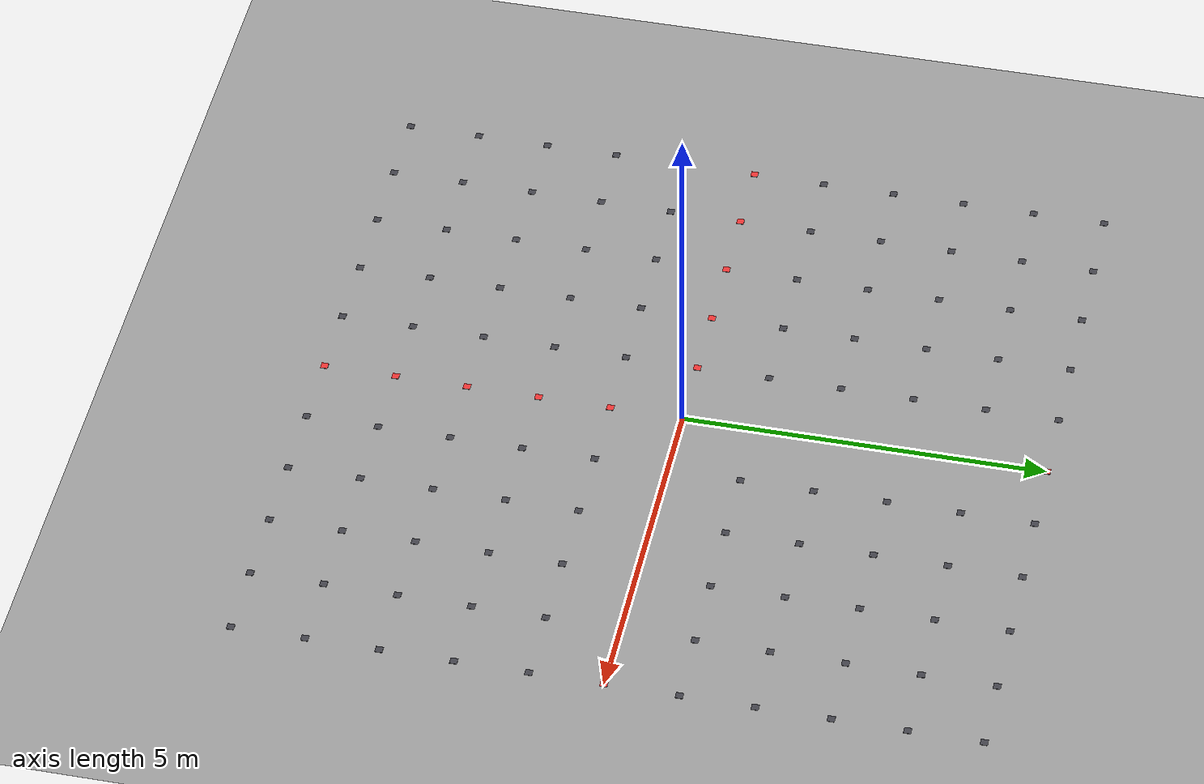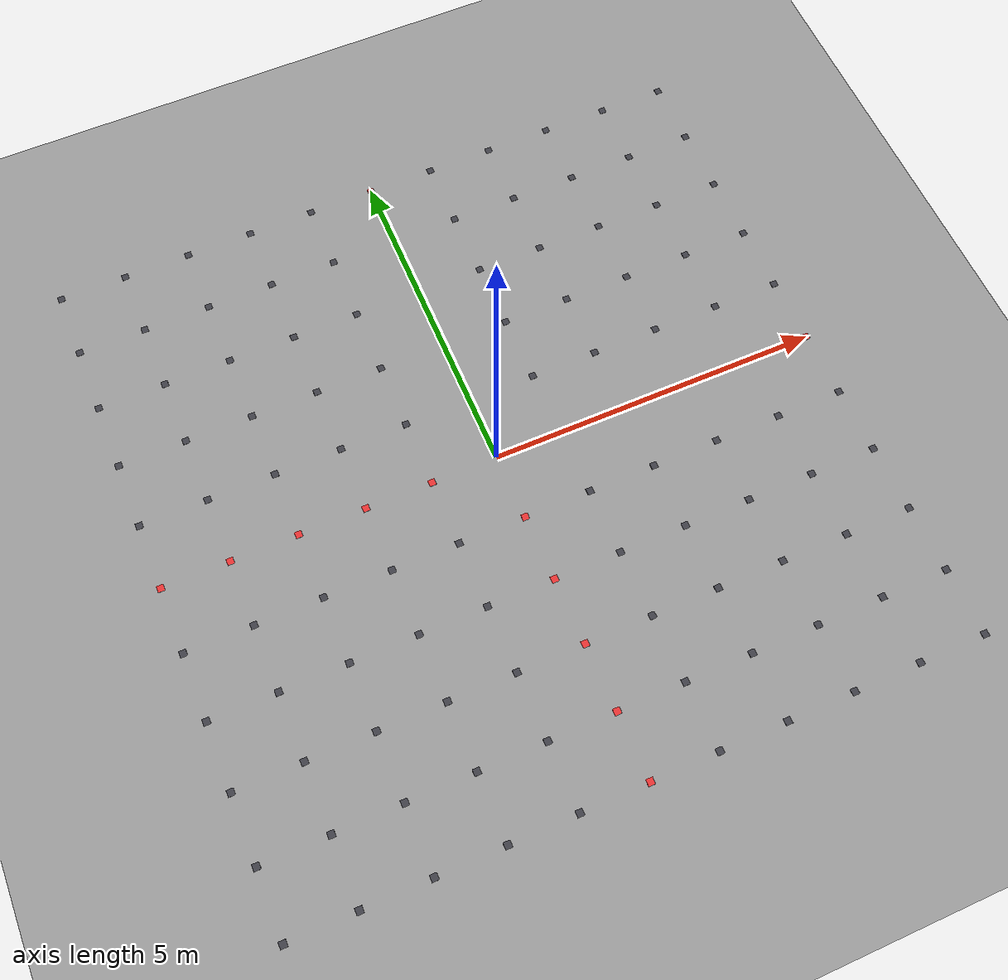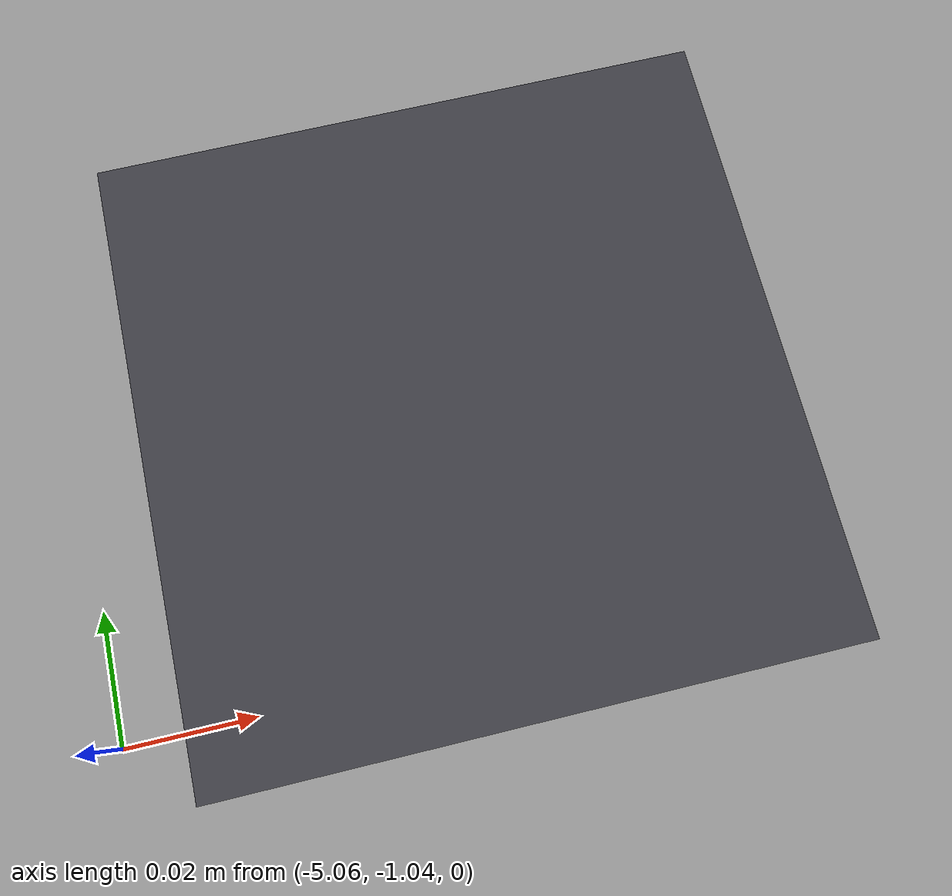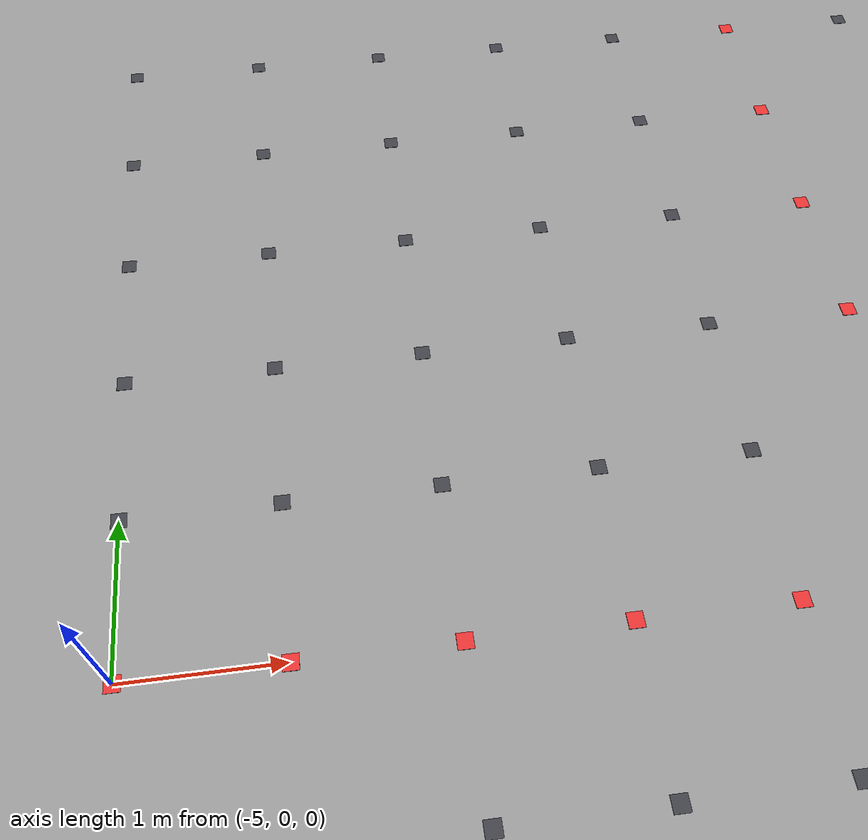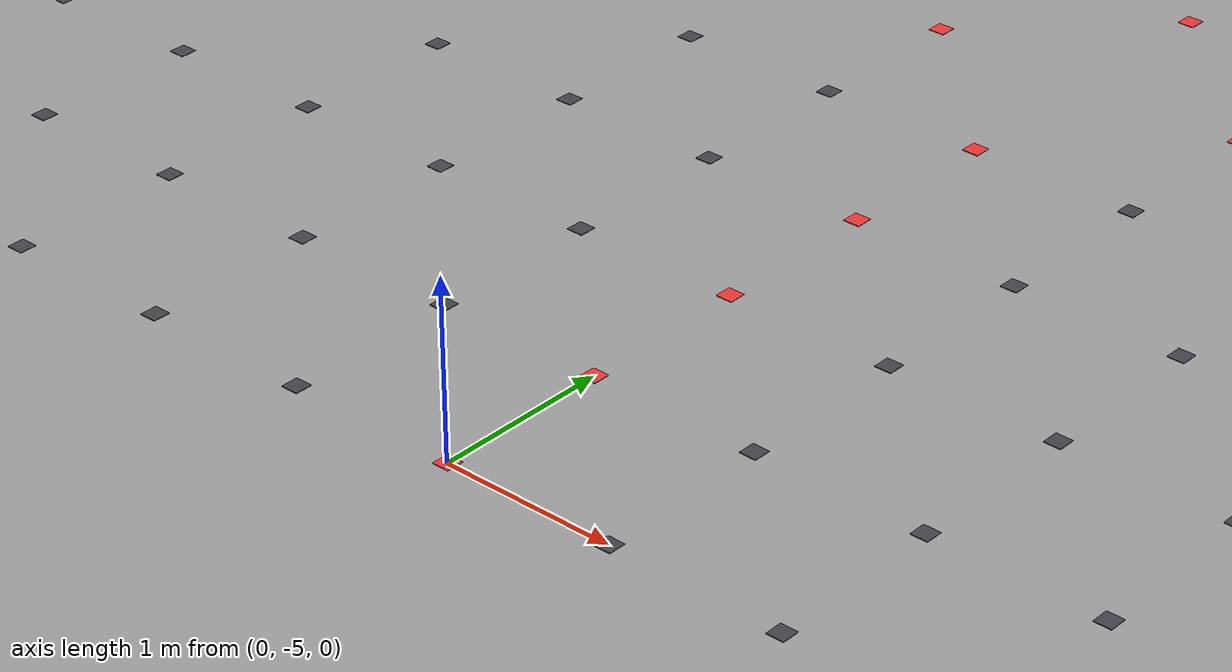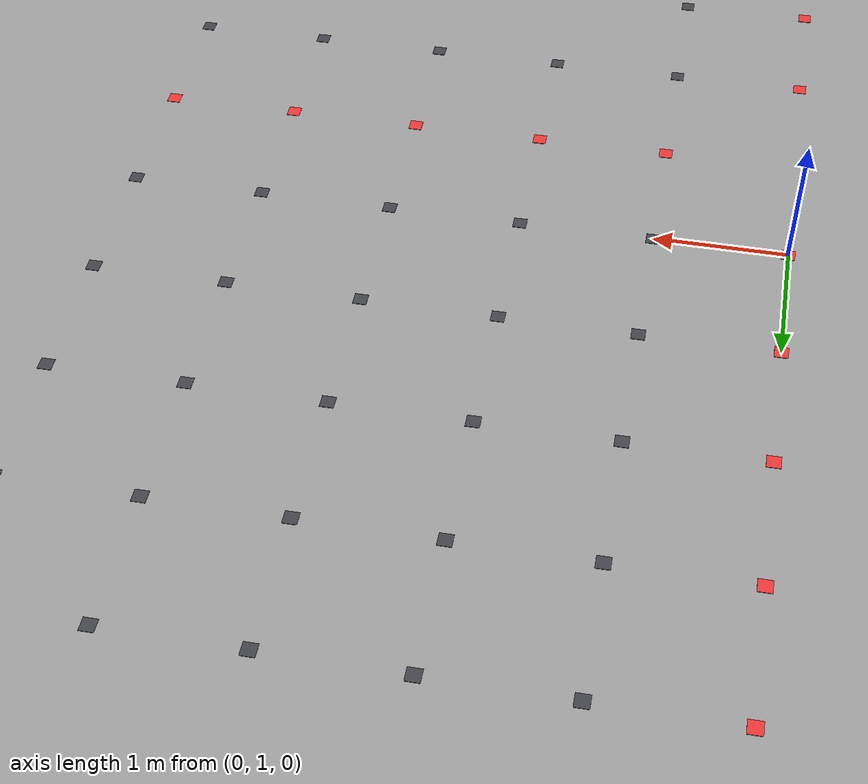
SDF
<?xml version="1.0" ?>
<sdf version="1.9">
  <world name="flat">
    <physics name="1ms" type="dart">
      <max_step_size>0.001</max_step_size>
      <real_time_factor>1.0</real_time_factor>
    </physics>

    <plugin filename="gz-sim-physics-system"
            name="gz::sim::systems::Physics"/>
    <plugin filename="gz-sim-user-commands-system"
            name="gz::sim::systems::UserCommands"/>
    <plugin filename="gz-sim-scene-broadcaster-system"
            name="gz::sim::systems::SceneBroadcaster"/>
    <plugin filename="gz-sim-sensors-system"
            name="gz::sim::systems::Sensors">
      <render_engine>ogre2</render_engine>
    </plugin>
    <plugin filename="gz-sim-imu-system"
            name="gz::sim::systems::Imu"/>

    <light type="directional" name="sun">
      <cast_shadows>true</cast_shadows>
      <pose>0 0 10 0 0 0</pose>
      <diffuse>0.8 0.8 0.8 1</diffuse>
      <specular>0.2 0.2 0.2 1</specular>
      <direction>-0.5 0.1 -0.9</direction>
    </light>

    <model name="ground_plane">
      <static>true</static>
      <link name="link">
        <collision name="collision">
          <geometry><plane><normal>0 0 1</normal><size>100 100</size></plane></geometry>
          <surface>
            <friction>
              <ode><mu>1.0</mu><mu2>1.0</mu2></ode>
            </friction>
          </surface>
        </collision>
        <visual name="visual">
          <geometry><plane><normal>0 0 1</normal><size>100 100</size></plane></geometry>
          <material>
            <ambient>0.4 0.4 0.4 1</ambient>
            <diffuse>0.6 0.6 0.6 1</diffuse>
          </material>
        </visual>
      </link>
    </model>

    <!-- Метки через метр: без них на однотонном полу невозможно на глаз
         оценить, поехал ли робот боком или просто развернулся. -->
    <model name="grid_marks">
      <static>true</static>
      <link name="link">
        <visual name="m_-5_-5">
          <pose>-5.0 -5.0 0.002 0 0 0</pose>
          <geometry><box><size>0.10 0.10 0.004</size></box></geometry>
          <material><ambient>0.25 0.25 0.28 1</ambient><diffuse>0.25 0.25 0.28 1</diffuse></material>
        </visual>
        <visual name="m_-5_-4">
          <pose>-5.0 -4.0 0.002 0 0 0</pose>
          <geometry><box><size>0.10 0.10 0.004</size></box></geometry>
          <material><ambient>0.25 0.25 0.28 1</ambient><diffuse>0.25 0.25 0.28 1</diffuse></material>
        </visual>
        <visual name="m_-5_-3">
          <pose>-5.0 -3.0 0.002 0 0 0</pose>
          <geometry><box><size>0.10 0.10 0.004</size></box></geometry>
          <material><ambient>0.25 0.25 0.28 1</ambient><diffuse>0.25 0.25 0.28 1</diffuse></material>
        </visual>
        <visual name="m_-5_-2">
          <pose>-5.0 -2.0 0.002 0 0 0</pose>
          <geometry><box><size>0.10 0.10 0.004</size></box></geometry>
          <material><ambient>0.25 0.25 0.28 1</ambient><diffuse>0.25 0.25 0.28 1</diffuse></material>
        </visual>
        <visual name="m_-5_-1">
          <pose>-5.0 -1.0 0.002 0 0 0</pose>
          <geometry><box><size>0.10 0.10 0.004</size></box></geometry>
          <material><ambient>0.25 0.25 0.28 1</ambient><diffuse>0.25 0.25 0.28 1</diffuse></material>
        </visual>
        <visual name="m_-5_0">
          <pose>-5.0 0.0 0.002 0 0 0</pose>
          <geometry><box><size>0.10 0.10 0.004</size></box></geometry>
          <material><ambient>0.9 0.2 0.2 1</ambient><diffuse>0.9 0.2 0.2 1</diffuse></material>
        </visual>
        <visual name="m_-5_1">
          <pose>-5.0 1.0 0.002 0 0 0</pose>
          <geometry><box><size>0.10 0.10 0.004</size></box></geometry>
          <material><ambient>0.25 0.25 0.28 1</ambient><diffuse>0.25 0.25 0.28 1</diffuse></material>
        </visual>
        <visual name="m_-5_2">
          <pose>-5.0 2.0 0.002 0 0 0</pose>
          <geometry><box><size>0.10 0.10 0.004</size></box></geometry>
          <material><ambient>0.25 0.25 0.28 1</ambient><diffuse>0.25 0.25 0.28 1</diffuse></material>
        </visual>
        <visual name="m_-5_3">
          <pose>-5.0 3.0 0.002 0 0 0</pose>
          <geometry><box><size>0.10 0.10 0.004</size></box></geometry>
          <material><ambient>0.25 0.25 0.28 1</ambient><diffuse>0.25 0.25 0.28 1</diffuse></material>
        </visual>
        <visual name="m_-5_4">
          <pose>-5.0 4.0 0.002 0 0 0</pose>
          <geometry><box><size>0.10 0.10 0.004</size></box></geometry>
          <material><ambient>0.25 0.25 0.28 1</ambient><diffuse>0.25 0.25 0.28 1</diffuse></material>
        </visual>
        <visual name="m_-5_5">
          <pose>-5.0 5.0 0.002 0 0 0</pose>
          <geometry><box><size>0.10 0.10 0.004</size></box></geometry>
          <material><ambient>0.25 0.25 0.28 1</ambient><diffuse>0.25 0.25 0.28 1</diffuse></material>
        </visual>
        <visual name="m_-4_-5">
          <pose>-4.0 -5.0 0.002 0 0 0</pose>
          <geometry><box><size>0.10 0.10 0.004</size></box></geometry>
          <material><ambient>0.25 0.25 0.28 1</ambient><diffuse>0.25 0.25 0.28 1</diffuse></material>
        </visual>
        <visual name="m_-4_-4">
          <pose>-4.0 -4.0 0.002 0 0 0</pose>
          <geometry><box><size>0.10 0.10 0.004</size></box></geometry>
          <material><ambient>0.25 0.25 0.28 1</ambient><diffuse>0.25 0.25 0.28 1</diffuse></material>
        </visual>
        <visual name="m_-4_-3">
          <pose>-4.0 -3.0 0.002 0 0 0</pose>
          <geometry><box><size>0.10 0.10 0.004</size></box></geometry>
          <material><ambient>0.25 0.25 0.28 1</ambient><diffuse>0.25 0.25 0.28 1</diffuse></material>
        </visual>
        <visual name="m_-4_-2">
          <pose>-4.0 -2.0 0.002 0 0 0</pose>
          <geometry><box><size>0.10 0.10 0.004</size></box></geometry>
          <material><ambient>0.25 0.25 0.28 1</ambient><diffuse>0.25 0.25 0.28 1</diffuse></material>
        </visual>
        <visual name="m_-4_-1">
          <pose>-4.0 -1.0 0.002 0 0 0</pose>
          <geometry><box><size>0.10 0.10 0.004</size></box></geometry>
          <material><ambient>0.25 0.25 0.28 1</ambient><diffuse>0.25 0.25 0.28 1</diffuse></material>
        </visual>
        <visual name="m_-4_0">
          <pose>-4.0 0.0 0.002 0 0 0</pose>
          <geometry><box><size>0.10 0.10 0.004</size></box></geometry>
          <material><ambient>0.9 0.2 0.2 1</ambient><diffuse>0.9 0.2 0.2 1</diffuse></material>
        </visual>
        <visual name="m_-4_1">
          <pose>-4.0 1.0 0.002 0 0 0</pose>
          <geometry><box><size>0.10 0.10 0.004</size></box></geometry>
          <material><ambient>0.25 0.25 0.28 1</ambient><diffuse>0.25 0.25 0.28 1</diffuse></material>
        </visual>
        <visual name="m_-4_2">
          <pose>-4.0 2.0 0.002 0 0 0</pose>
          <geometry><box><size>0.10 0.10 0.004</size></box></geometry>
          <material><ambient>0.25 0.25 0.28 1</ambient><diffuse>0.25 0.25 0.28 1</diffuse></material>
        </visual>
        <visual name="m_-4_3">
          <pose>-4.0 3.0 0.002 0 0 0</pose>
          <geometry><box><size>0.10 0.10 0.004</size></box></geometry>
          <material><ambient>0.25 0.25 0.28 1</ambient><diffuse>0.25 0.25 0.28 1</diffuse></material>
        </visual>
        <visual name="m_-4_4">
          <pose>-4.0 4.0 0.002 0 0 0</pose>
          <geometry><box><size>0.10 0.10 0.004</size></box></geometry>
          <material><ambient>0.25 0.25 0.28 1</ambient><diffuse>0.25 0.25 0.28 1</diffuse></material>
        </visual>
        <visual name="m_-4_5">
          <pose>-4.0 5.0 0.002 0 0 0</pose>
          <geometry><box><size>0.10 0.10 0.004</size></box></geometry>
          <material><ambient>0.25 0.25 0.28 1</ambient><diffuse>0.25 0.25 0.28 1</diffuse></material>
        </visual>
        <visual name="m_-3_-5">
          <pose>-3.0 -5.0 0.002 0 0 0</pose>
          <geometry><box><size>0.10 0.10 0.004</size></box></geometry>
          <material><ambient>0.25 0.25 0.28 1</ambient><diffuse>0.25 0.25 0.28 1</diffuse></material>
        </visual>
        <visual name="m_-3_-4">
          <pose>-3.0 -4.0 0.002 0 0 0</pose>
          <geometry><box><size>0.10 0.10 0.004</size></box></geometry>
          <material><ambient>0.25 0.25 0.28 1</ambient><diffuse>0.25 0.25 0.28 1</diffuse></material>
        </visual>
        <visual name="m_-3_-3">
          <pose>-3.0 -3.0 0.002 0 0 0</pose>
          <geometry><box><size>0.10 0.10 0.004</size></box></geometry>
          <material><ambient>0.25 0.25 0.28 1</ambient><diffuse>0.25 0.25 0.28 1</diffuse></material>
        </visual>
        <visual name="m_-3_-2">
          <pose>-3.0 -2.0 0.002 0 0 0</pose>
          <geometry><box><size>0.10 0.10 0.004</size></box></geometry>
          <material><ambient>0.25 0.25 0.28 1</ambient><diffuse>0.25 0.25 0.28 1</diffuse></material>
        </visual>
        <visual name="m_-3_-1">
          <pose>-3.0 -1.0 0.002 0 0 0</pose>
          <geometry><box><size>0.10 0.10 0.004</size></box></geometry>
          <material><ambient>0.25 0.25 0.28 1</ambient><diffuse>0.25 0.25 0.28 1</diffuse></material>
        </visual>
        <visual name="m_-3_0">
          <pose>-3.0 0.0 0.002 0 0 0</pose>
          <geometry><box><size>0.10 0.10 0.004</size></box></geometry>
          <material><ambient>0.9 0.2 0.2 1</ambient><diffuse>0.9 0.2 0.2 1</diffuse></material>
        </visual>
        <visual name="m_-3_1">
          <pose>-3.0 1.0 0.002 0 0 0</pose>
          <geometry><box><size>0.10 0.10 0.004</size></box></geometry>
          <material><ambient>0.25 0.25 0.28 1</ambient><diffuse>0.25 0.25 0.28 1</diffuse></material>
        </visual>
        <visual name="m_-3_2">
          <pose>-3.0 2.0 0.002 0 0 0</pose>
          <geometry><box><size>0.10 0.10 0.004</size></box></geometry>
          <material><ambient>0.25 0.25 0.28 1</ambient><diffuse>0.25 0.25 0.28 1</diffuse></material>
        </visual>
        <visual name="m_-3_3">
          <pose>-3.0 3.0 0.002 0 0 0</pose>
          <geometry><box><size>0.10 0.10 0.004</size></box></geometry>
          <material><ambient>0.25 0.25 0.28 1</ambient><diffuse>0.25 0.25 0.28 1</diffuse></material>
        </visual>
        <visual name="m_-3_4">
          <pose>-3.0 4.0 0.002 0 0 0</pose>
          <geometry><box><size>0.10 0.10 0.004</size></box></geometry>
          <material><ambient>0.25 0.25 0.28 1</ambient><diffuse>0.25 0.25 0.28 1</diffuse></material>
        </visual>
        <visual name="m_-3_5">
          <pose>-3.0 5.0 0.002 0 0 0</pose>
          <geometry><box><size>0.10 0.10 0.004</size></box></geometry>
          <material><ambient>0.25 0.25 0.28 1</ambient><diffuse>0.25 0.25 0.28 1</diffuse></material>
        </visual>
        <visual name="m_-2_-5">
          <pose>-2.0 -5.0 0.002 0 0 0</pose>
          <geometry><box><size>0.10 0.10 0.004</size></box></geometry>
          <material><ambient>0.25 0.25 0.28 1</ambient><diffuse>0.25 0.25 0.28 1</diffuse></material>
        </visual>
        <visual name="m_-2_-4">
          <pose>-2.0 -4.0 0.002 0 0 0</pose>
          <geometry><box><size>0.10 0.10 0.004</size></box></geometry>
          <material><ambient>0.25 0.25 0.28 1</ambient><diffuse>0.25 0.25 0.28 1</diffuse></material>
        </visual>
        <visual name="m_-2_-3">
          <pose>-2.0 -3.0 0.002 0 0 0</pose>
          <geometry><box><size>0.10 0.10 0.004</size></box></geometry>
          <material><ambient>0.25 0.25 0.28 1</ambient><diffuse>0.25 0.25 0.28 1</diffuse></material>
        </visual>
        <visual name="m_-2_-2">
          <pose>-2.0 -2.0 0.002 0 0 0</pose>
          <geometry><box><size>0.10 0.10 0.004</size></box></geometry>
          <material><ambient>0.25 0.25 0.28 1</ambient><diffuse>0.25 0.25 0.28 1</diffuse></material>
        </visual>
        <visual name="m_-2_-1">
          <pose>-2.0 -1.0 0.002 0 0 0</pose>
          <geometry><box><size>0.10 0.10 0.004</size></box></geometry>
          <material><ambient>0.25 0.25 0.28 1</ambient><diffuse>0.25 0.25 0.28 1</diffuse></material>
        </visual>
        <visual name="m_-2_0">
          <pose>-2.0 0.0 0.002 0 0 0</pose>
          <geometry><box><size>0.10 0.10 0.004</size></box></geometry>
          <material><ambient>0.9 0.2 0.2 1</ambient><diffuse>0.9 0.2 0.2 1</diffuse></material>
        </visual>
        <visual name="m_-2_1">
          <pose>-2.0 1.0 0.002 0 0 0</pose>
          <geometry><box><size>0.10 0.10 0.004</size></box></geometry>
          <material><ambient>0.25 0.25 0.28 1</ambient><diffuse>0.25 0.25 0.28 1</diffuse></material>
        </visual>
        <visual name="m_-2_2">
          <pose>-2.0 2.0 0.002 0 0 0</pose>
          <geometry><box><size>0.10 0.10 0.004</size></box></geometry>
          <material><ambient>0.25 0.25 0.28 1</ambient><diffuse>0.25 0.25 0.28 1</diffuse></material>
        </visual>
        <visual name="m_-2_3">
          <pose>-2.0 3.0 0.002 0 0 0</pose>
          <geometry><box><size>0.10 0.10 0.004</size></box></geometry>
          <material><ambient>0.25 0.25 0.28 1</ambient><diffuse>0.25 0.25 0.28 1</diffuse></material>
        </visual>
        <visual name="m_-2_4">
          <pose>-2.0 4.0 0.002 0 0 0</pose>
          <geometry><box><size>0.10 0.10 0.004</size></box></geometry>
          <material><ambient>0.25 0.25 0.28 1</ambient><diffuse>0.25 0.25 0.28 1</diffuse></material>
        </visual>
        <visual name="m_-2_5">
          <pose>-2.0 5.0 0.002 0 0 0</pose>
          <geometry><box><size>0.10 0.10 0.004</size></box></geometry>
          <material><ambient>0.25 0.25 0.28 1</ambient><diffuse>0.25 0.25 0.28 1</diffuse></material>
        </visual>
        <visual name="m_-1_-5">
          <pose>-1.0 -5.0 0.002 0 0 0</pose>
          <geometry><box><size>0.10 0.10 0.004</size></box></geometry>
          <material><ambient>0.25 0.25 0.28 1</ambient><diffuse>0.25 0.25 0.28 1</diffuse></material>
        </visual>
        <visual name="m_-1_-4">
          <pose>-1.0 -4.0 0.002 0 0 0</pose>
          <geometry><box><size>0.10 0.10 0.004</size></box></geometry>
          <material><ambient>0.25 0.25 0.28 1</ambient><diffuse>0.25 0.25 0.28 1</diffuse></material>
        </visual>
        <visual name="m_-1_-3">
          <pose>-1.0 -3.0 0.002 0 0 0</pose>
          <geometry><box><size>0.10 0.10 0.004</size></box></geometry>
          <material><ambient>0.25 0.25 0.28 1</ambient><diffuse>0.25 0.25 0.28 1</diffuse></material>
        </visual>
        <visual name="m_-1_-2">
          <pose>-1.0 -2.0 0.002 0 0 0</pose>
          <geometry><box><size>0.10 0.10 0.004</size></box></geometry>
          <material><ambient>0.25 0.25 0.28 1</ambient><diffuse>0.25 0.25 0.28 1</diffuse></material>
        </visual>
        <visual name="m_-1_-1">
          <pose>-1.0 -1.0 0.002 0 0 0</pose>
          <geometry><box><size>0.10 0.10 0.004</size></box></geometry>
          <material><ambient>0.25 0.25 0.28 1</ambient><diffuse>0.25 0.25 0.28 1</diffuse></material>
        </visual>
        <visual name="m_-1_0">
          <pose>-1.0 0.0 0.002 0 0 0</pose>
          <geometry><box><size>0.10 0.10 0.004</size></box></geometry>
          <material><ambient>0.9 0.2 0.2 1</ambient><diffuse>0.9 0.2 0.2 1</diffuse></material>
        </visual>
        <visual name="m_-1_1">
          <pose>-1.0 1.0 0.002 0 0 0</pose>
          <geometry><box><size>0.10 0.10 0.004</size></box></geometry>
          <material><ambient>0.25 0.25 0.28 1</ambient><diffuse>0.25 0.25 0.28 1</diffuse></material>
        </visual>
        <visual name="m_-1_2">
          <pose>-1.0 2.0 0.002 0 0 0</pose>
          <geometry><box><size>0.10 0.10 0.004</size></box></geometry>
          <material><ambient>0.25 0.25 0.28 1</ambient><diffuse>0.25 0.25 0.28 1</diffuse></material>
        </visual>
        <visual name="m_-1_3">
          <pose>-1.0 3.0 0.002 0 0 0</pose>
          <geometry><box><size>0.10 0.10 0.004</size></box></geometry>
          <material><ambient>0.25 0.25 0.28 1</ambient><diffuse>0.25 0.25 0.28 1</diffuse></material>
        </visual>
        <visual name="m_-1_4">
          <pose>-1.0 4.0 0.002 0 0 0</pose>
          <geometry><box><size>0.10 0.10 0.004</size></box></geometry>
          <material><ambient>0.25 0.25 0.28 1</ambient><diffuse>0.25 0.25 0.28 1</diffuse></material>
        </visual>
        <visual name="m_-1_5">
          <pose>-1.0 5.0 0.002 0 0 0</pose>
          <geometry><box><size>0.10 0.10 0.004</size></box></geometry>
          <material><ambient>0.25 0.25 0.28 1</ambient><diffuse>0.25 0.25 0.28 1</diffuse></material>
        </visual>
        <visual name="m_0_-5">
          <pose>0.0 -5.0 0.002 0 0 0</pose>
          <geometry><box><size>0.10 0.10 0.004</size></box></geometry>
          <material><ambient>0.9 0.2 0.2 1</ambient><diffuse>0.9 0.2 0.2 1</diffuse></material>
        </visual>
        <visual name="m_0_-4">
          <pose>0.0 -4.0 0.002 0 0 0</pose>
          <geometry><box><size>0.10 0.10 0.004</size></box></geometry>
          <material><ambient>0.9 0.2 0.2 1</ambient><diffuse>0.9 0.2 0.2 1</diffuse></material>
        </visual>
        <visual name="m_0_-3">
          <pose>0.0 -3.0 0.002 0 0 0</pose>
          <geometry><box><size>0.10 0.10 0.004</size></box></geometry>
          <material><ambient>0.9 0.2 0.2 1</ambient><diffuse>0.9 0.2 0.2 1</diffuse></material>
        </visual>
        <visual name="m_0_-2">
          <pose>0.0 -2.0 0.002 0 0 0</pose>
          <geometry><box><size>0.10 0.10 0.004</size></box></geometry>
          <material><ambient>0.9 0.2 0.2 1</ambient><diffuse>0.9 0.2 0.2 1</diffuse></material>
        </visual>
        <visual name="m_0_-1">
          <pose>0.0 -1.0 0.002 0 0 0</pose>
          <geometry><box><size>0.10 0.10 0.004</size></box></geometry>
          <material><ambient>0.9 0.2 0.2 1</ambient><diffuse>0.9 0.2 0.2 1</diffuse></material>
        </visual>
        <visual name="m_0_1">
          <pose>0.0 1.0 0.002 0 0 0</pose>
          <geometry><box><size>0.10 0.10 0.004</size></box></geometry>
          <material><ambient>0.9 0.2 0.2 1</ambient><diffuse>0.9 0.2 0.2 1</diffuse></material>
        </visual>
        <visual name="m_0_2">
          <pose>0.0 2.0 0.002 0 0 0</pose>
          <geometry><box><size>0.10 0.10 0.004</size></box></geometry>
          <material><ambient>0.9 0.2 0.2 1</ambient><diffuse>0.9 0.2 0.2 1</diffuse></material>
        </visual>
        <visual name="m_0_3">
          <pose>0.0 3.0 0.002 0 0 0</pose>
          <geometry><box><size>0.10 0.10 0.004</size></box></geometry>
          <material><ambient>0.9 0.2 0.2 1</ambient><diffuse>0.9 0.2 0.2 1</diffuse></material>
        </visual>
        <visual name="m_0_4">
          <pose>0.0 4.0 0.002 0 0 0</pose>
          <geometry><box><size>0.10 0.10 0.004</size></box></geometry>
          <material><ambient>0.9 0.2 0.2 1</ambient><diffuse>0.9 0.2 0.2 1</diffuse></material>
        </visual>
        <visual name="m_0_5">
          <pose>0.0 5.0 0.002 0 0 0</pose>
          <geometry><box><size>0.10 0.10 0.004</size></box></geometry>
          <material><ambient>0.9 0.2 0.2 1</ambient><diffuse>0.9 0.2 0.2 1</diffuse></material>
        </visual>
        <visual name="m_1_-5">
          <pose>1.0 -5.0 0.002 0 0 0</pose>
          <geometry><box><size>0.10 0.10 0.004</size></box></geometry>
          <material><ambient>0.25 0.25 0.28 1</ambient><diffuse>0.25 0.25 0.28 1</diffuse></material>
        </visual>
        <visual name="m_1_-4">
          <pose>1.0 -4.0 0.002 0 0 0</pose>
          <geometry><box><size>0.10 0.10 0.004</size></box></geometry>
          <material><ambient>0.25 0.25 0.28 1</ambient><diffuse>0.25 0.25 0.28 1</diffuse></material>
        </visual>
        <visual name="m_1_-3">
          <pose>1.0 -3.0 0.002 0 0 0</pose>
          <geometry><box><size>0.10 0.10 0.004</size></box></geometry>
          <material><ambient>0.25 0.25 0.28 1</ambient><diffuse>0.25 0.25 0.28 1</diffuse></material>
        </visual>
        <visual name="m_1_-2">
          <pose>1.0 -2.0 0.002 0 0 0</pose>
          <geometry><box><size>0.10 0.10 0.004</size></box></geometry>
          <material><ambient>0.25 0.25 0.28 1</ambient><diffuse>0.25 0.25 0.28 1</diffuse></material>
        </visual>
        <visual name="m_1_-1">
          <pose>1.0 -1.0 0.002 0 0 0</pose>
          <geometry><box><size>0.10 0.10 0.004</size></box></geometry>
          <material><ambient>0.25 0.25 0.28 1</ambient><diffuse>0.25 0.25 0.28 1</diffuse></material>
        </visual>
        <visual name="m_1_0">
          <pose>1.0 0.0 0.002 0 0 0</pose>
          <geometry><box><size>0.10 0.10 0.004</size></box></geometry>
          <material><ambient>0.9 0.2 0.2 1</ambient><diffuse>0.9 0.2 0.2 1</diffuse></material>
        </visual>
        <visual name="m_1_1">
          <pose>1.0 1.0 0.002 0 0 0</pose>
          <geometry><box><size>0.10 0.10 0.004</size></box></geometry>
          <material><ambient>0.25 0.25 0.28 1</ambient><diffuse>0.25 0.25 0.28 1</diffuse></material>
        </visual>
        <visual name="m_1_2">
          <pose>1.0 2.0 0.002 0 0 0</pose>
          <geometry><box><size>0.10 0.10 0.004</size></box></geometry>
          <material><ambient>0.25 0.25 0.28 1</ambient><diffuse>0.25 0.25 0.28 1</diffuse></material>
        </visual>
        <visual name="m_1_3">
          <pose>1.0 3.0 0.002 0 0 0</pose>
          <geometry><box><size>0.10 0.10 0.004</size></box></geometry>
          <material><ambient>0.25 0.25 0.28 1</ambient><diffuse>0.25 0.25 0.28 1</diffuse></material>
        </visual>
        <visual name="m_1_4">
          <pose>1.0 4.0 0.002 0 0 0</pose>
          <geometry><box><size>0.10 0.10 0.004</size></box></geometry>
          <material><ambient>0.25 0.25 0.28 1</ambient><diffuse>0.25 0.25 0.28 1</diffuse></material>
        </visual>
        <visual name="m_1_5">
          <pose>1.0 5.0 0.002 0 0 0</pose>
          <geometry><box><size>0.10 0.10 0.004</size></box></geometry>
          <material><ambient>0.25 0.25 0.28 1</ambient><diffuse>0.25 0.25 0.28 1</diffuse></material>
        </visual>
        <visual name="m_2_-5">
          <pose>2.0 -5.0 0.002 0 0 0</pose>
          <geometry><box><size>0.10 0.10 0.004</size></box></geometry>
          <material><ambient>0.25 0.25 0.28 1</ambient><diffuse>0.25 0.25 0.28 1</diffuse></material>
        </visual>
        <visual name="m_2_-4">
          <pose>2.0 -4.0 0.002 0 0 0</pose>
          <geometry><box><size>0.10 0.10 0.004</size></box></geometry>
          <material><ambient>0.25 0.25 0.28 1</ambient><diffuse>0.25 0.25 0.28 1</diffuse></material>
        </visual>
        <visual name="m_2_-3">
          <pose>2.0 -3.0 0.002 0 0 0</pose>
          <geometry><box><size>0.10 0.10 0.004</size></box></geometry>
          <material><ambient>0.25 0.25 0.28 1</ambient><diffuse>0.25 0.25 0.28 1</diffuse></material>
        </visual>
        <visual name="m_2_-2">
          <pose>2.0 -2.0 0.002 0 0 0</pose>
          <geometry><box><size>0.10 0.10 0.004</size></box></geometry>
          <material><ambient>0.25 0.25 0.28 1</ambient><diffuse>0.25 0.25 0.28 1</diffuse></material>
        </visual>
        <visual name="m_2_-1">
          <pose>2.0 -1.0 0.002 0 0 0</pose>
          <geometry><box><size>0.10 0.10 0.004</size></box></geometry>
          <material><ambient>0.25 0.25 0.28 1</ambient><diffuse>0.25 0.25 0.28 1</diffuse></material>
        </visual>
        <visual name="m_2_0">
          <pose>2.0 0.0 0.002 0 0 0</pose>
          <geometry><box><size>0.10 0.10 0.004</size></box></geometry>
          <material><ambient>0.9 0.2 0.2 1</ambient><diffuse>0.9 0.2 0.2 1</diffuse></material>
        </visual>
        <visual name="m_2_1">
          <pose>2.0 1.0 0.002 0 0 0</pose>
          <geometry><box><size>0.10 0.10 0.004</size></box></geometry>
          <material><ambient>0.25 0.25 0.28 1</ambient><diffuse>0.25 0.25 0.28 1</diffuse></material>
        </visual>
        <visual name="m_2_2">
          <pose>2.0 2.0 0.002 0 0 0</pose>
          <geometry><box><size>0.10 0.10 0.004</size></box></geometry>
          <material><ambient>0.25 0.25 0.28 1</ambient><diffuse>0.25 0.25 0.28 1</diffuse></material>
        </visual>
        <visual name="m_2_3">
          <pose>2.0 3.0 0.002 0 0 0</pose>
          <geometry><box><size>0.10 0.10 0.004</size></box></geometry>
          <material><ambient>0.25 0.25 0.28 1</ambient><diffuse>0.25 0.25 0.28 1</diffuse></material>
        </visual>
        <visual name="m_2_4">
          <pose>2.0 4.0 0.002 0 0 0</pose>
          <geometry><box><size>0.10 0.10 0.004</size></box></geometry>
          <material><ambient>0.25 0.25 0.28 1</ambient><diffuse>0.25 0.25 0.28 1</diffuse></material>
        </visual>
        <visual name="m_2_5">
          <pose>2.0 5.0 0.002 0 0 0</pose>
          <geometry><box><size>0.10 0.10 0.004</size></box></geometry>
          <material><ambient>0.25 0.25 0.28 1</ambient><diffuse>0.25 0.25 0.28 1</diffuse></material>
        </visual>
        <visual name="m_3_-5">
          <pose>3.0 -5.0 0.002 0 0 0</pose>
          <geometry><box><size>0.10 0.10 0.004</size></box></geometry>
          <material><ambient>0.25 0.25 0.28 1</ambient><diffuse>0.25 0.25 0.28 1</diffuse></material>
        </visual>
        <visual name="m_3_-4">
          <pose>3.0 -4.0 0.002 0 0 0</pose>
          <geometry><box><size>0.10 0.10 0.004</size></box></geometry>
          <material><ambient>0.25 0.25 0.28 1</ambient><diffuse>0.25 0.25 0.28 1</diffuse></material>
        </visual>
        <visual name="m_3_-3">
          <pose>3.0 -3.0 0.002 0 0 0</pose>
          <geometry><box><size>0.10 0.10 0.004</size></box></geometry>
          <material><ambient>0.25 0.25 0.28 1</ambient><diffuse>0.25 0.25 0.28 1</diffuse></material>
        </visual>
        <visual name="m_3_-2">
          <pose>3.0 -2.0 0.002 0 0 0</pose>
          <geometry><box><size>0.10 0.10 0.004</size></box></geometry>
          <material><ambient>0.25 0.25 0.28 1</ambient><diffuse>0.25 0.25 0.28 1</diffuse></material>
        </visual>
        <visual name="m_3_-1">
          <pose>3.0 -1.0 0.002 0 0 0</pose>
          <geometry><box><size>0.10 0.10 0.004</size></box></geometry>
          <material><ambient>0.25 0.25 0.28 1</ambient><diffuse>0.25 0.25 0.28 1</diffuse></material>
        </visual>
        <visual name="m_3_0">
          <pose>3.0 0.0 0.002 0 0 0</pose>
          <geometry><box><size>0.10 0.10 0.004</size></box></geometry>
          <material><ambient>0.9 0.2 0.2 1</ambient><diffuse>0.9 0.2 0.2 1</diffuse></material>
        </visual>
        <visual name="m_3_1">
          <pose>3.0 1.0 0.002 0 0 0</pose>
          <geometry><box><size>0.10 0.10 0.004</size></box></geometry>
          <material><ambient>0.25 0.25 0.28 1</ambient><diffuse>0.25 0.25 0.28 1</diffuse></material>
        </visual>
        <visual name="m_3_2">
          <pose>3.0 2.0 0.002 0 0 0</pose>
          <geometry><box><size>0.10 0.10 0.004</size></box></geometry>
          <material><ambient>0.25 0.25 0.28 1</ambient><diffuse>0.25 0.25 0.28 1</diffuse></material>
        </visual>
        <visual name="m_3_3">
          <pose>3.0 3.0 0.002 0 0 0</pose>
          <geometry><box><size>0.10 0.10 0.004</size></box></geometry>
          <material><ambient>0.25 0.25 0.28 1</ambient><diffuse>0.25 0.25 0.28 1</diffuse></material>
        </visual>
        <visual name="m_3_4">
          <pose>3.0 4.0 0.002 0 0 0</pose>
          <geometry><box><size>0.10 0.10 0.004</size></box></geometry>
          <material><ambient>0.25 0.25 0.28 1</ambient><diffuse>0.25 0.25 0.28 1</diffuse></material>
        </visual>
        <visual name="m_3_5">
          <pose>3.0 5.0 0.002 0 0 0</pose>
          <geometry><box><size>0.10 0.10 0.004</size></box></geometry>
          <material><ambient>0.25 0.25 0.28 1</ambient><diffuse>0.25 0.25 0.28 1</diffuse></material>
        </visual>
        <visual name="m_4_-5">
          <pose>4.0 -5.0 0.002 0 0 0</pose>
          <geometry><box><size>0.10 0.10 0.004</size></box></geometry>
          <material><ambient>0.25 0.25 0.28 1</ambient><diffuse>0.25 0.25 0.28 1</diffuse></material>
        </visual>
        <visual name="m_4_-4">
          <pose>4.0 -4.0 0.002 0 0 0</pose>
          <geometry><box><size>0.10 0.10 0.004</size></box></geometry>
          <material><ambient>0.25 0.25 0.28 1</ambient><diffuse>0.25 0.25 0.28 1</diffuse></material>
        </visual>
        <visual name="m_4_-3">
          <pose>4.0 -3.0 0.002 0 0 0</pose>
          <geometry><box><size>0.10 0.10 0.004</size></box></geometry>
          <material><ambient>0.25 0.25 0.28 1</ambient><diffuse>0.25 0.25 0.28 1</diffuse></material>
        </visual>
        <visual name="m_4_-2">
          <pose>4.0 -2.0 0.002 0 0 0</pose>
          <geometry><box><size>0.10 0.10 0.004</size></box></geometry>
          <material><ambient>0.25 0.25 0.28 1</ambient><diffuse>0.25 0.25 0.28 1</diffuse></material>
        </visual>
        <visual name="m_4_-1">
          <pose>4.0 -1.0 0.002 0 0 0</pose>
          <geometry><box><size>0.10 0.10 0.004</size></box></geometry>
          <material><ambient>0.25 0.25 0.28 1</ambient><diffuse>0.25 0.25 0.28 1</diffuse></material>
        </visual>
        <visual name="m_4_0">
          <pose>4.0 0.0 0.002 0 0 0</pose>
          <geometry><box><size>0.10 0.10 0.004</size></box></geometry>
          <material><ambient>0.9 0.2 0.2 1</ambient><diffuse>0.9 0.2 0.2 1</diffuse></material>
        </visual>
        <visual name="m_4_1">
          <pose>4.0 1.0 0.002 0 0 0</pose>
          <geometry><box><size>0.10 0.10 0.004</size></box></geometry>
          <material><ambient>0.25 0.25 0.28 1</ambient><diffuse>0.25 0.25 0.28 1</diffuse></material>
        </visual>
        <visual name="m_4_2">
          <pose>4.0 2.0 0.002 0 0 0</pose>
          <geometry><box><size>0.10 0.10 0.004</size></box></geometry>
          <material><ambient>0.25 0.25 0.28 1</ambient><diffuse>0.25 0.25 0.28 1</diffuse></material>
        </visual>
        <visual name="m_4_3">
          <pose>4.0 3.0 0.002 0 0 0</pose>
          <geometry><box><size>0.10 0.10 0.004</size></box></geometry>
          <material><ambient>0.25 0.25 0.28 1</ambient><diffuse>0.25 0.25 0.28 1</diffuse></material>
        </visual>
        <visual name="m_4_4">
          <pose>4.0 4.0 0.002 0 0 0</pose>
          <geometry><box><size>0.10 0.10 0.004</size></box></geometry>
          <material><ambient>0.25 0.25 0.28 1</ambient><diffuse>0.25 0.25 0.28 1</diffuse></material>
        </visual>
        <visual name="m_4_5">
          <pose>4.0 5.0 0.002 0 0 0</pose>
          <geometry><box><size>0.10 0.10 0.004</size></box></geometry>
          <material><ambient>0.25 0.25 0.28 1</ambient><diffuse>0.25 0.25 0.28 1</diffuse></material>
        </visual>
        <visual name="m_5_-5">
          <pose>5.0 -5.0 0.002 0 0 0</pose>
          <geometry><box><size>0.10 0.10 0.004</size></box></geometry>
          <material><ambient>0.25 0.25 0.28 1</ambient><diffuse>0.25 0.25 0.28 1</diffuse></material>
        </visual>
        <visual name="m_5_-4">
          <pose>5.0 -4.0 0.002 0 0 0</pose>
          <geometry><box><size>0.10 0.10 0.004</size></box></geometry>
          <material><ambient>0.25 0.25 0.28 1</ambient><diffuse>0.25 0.25 0.28 1</diffuse></material>
        </visual>
        <visual name="m_5_-3">
          <pose>5.0 -3.0 0.002 0 0 0</pose>
          <geometry><box><size>0.10 0.10 0.004</size></box></geometry>
          <material><ambient>0.25 0.25 0.28 1</ambient><diffuse>0.25 0.25 0.28 1</diffuse></material>
        </visual>
        <visual name="m_5_-2">
          <pose>5.0 -2.0 0.002 0 0 0</pose>
          <geometry><box><size>0.10 0.10 0.004</size></box></geometry>
          <material><ambient>0.25 0.25 0.28 1</ambient><diffuse>0.25 0.25 0.28 1</diffuse></material>
        </visual>
        <visual name="m_5_-1">
          <pose>5.0 -1.0 0.002 0 0 0</pose>
          <geometry><box><size>0.10 0.10 0.004</size></box></geometry>
          <material><ambient>0.25 0.25 0.28 1</ambient><diffuse>0.25 0.25 0.28 1</diffuse></material>
        </visual>
        <visual name="m_5_0">
          <pose>5.0 0.0 0.002 0 0 0</pose>
          <geometry><box><size>0.10 0.10 0.004</size></box></geometry>
          <material><ambient>0.9 0.2 0.2 1</ambient><diffuse>0.9 0.2 0.2 1</diffuse></material>
        </visual>
        <visual name="m_5_1">
          <pose>5.0 1.0 0.002 0 0 0</pose>
          <geometry><box><size>0.10 0.10 0.004</size></box></geometry>
          <material><ambient>0.25 0.25 0.28 1</ambient><diffuse>0.25 0.25 0.28 1</diffuse></material>
        </visual>
        <visual name="m_5_2">
          <pose>5.0 2.0 0.002 0 0 0</pose>
          <geometry><box><size>0.10 0.10 0.004</size></box></geometry>
          <material><ambient>0.25 0.25 0.28 1</ambient><diffuse>0.25 0.25 0.28 1</diffuse></material>
        </visual>
        <visual name="m_5_3">
          <pose>5.0 3.0 0.002 0 0 0</pose>
          <geometry><box><size>0.10 0.10 0.004</size></box></geometry>
          <material><ambient>0.25 0.25 0.28 1</ambient><diffuse>0.25 0.25 0.28 1</diffuse></material>
        </visual>
        <visual name="m_5_4">
          <pose>5.0 4.0 0.002 0 0 0</pose>
          <geometry><box><size>0.10 0.10 0.004</size></box></geometry>
          <material><ambient>0.25 0.25 0.28 1</ambient><diffuse>0.25 0.25 0.28 1</diffuse></material>
        </visual>
        <visual name="m_5_5">
          <pose>5.0 5.0 0.002 0 0 0</pose>
          <geometry><box><size>0.10 0.10 0.004</size></box></geometry>
          <material><ambient>0.25 0.25 0.28 1</ambient><diffuse>0.25 0.25 0.28 1</diffuse></material>
        </visual>
      </link>
    </model>
  </world>
</sdf>
